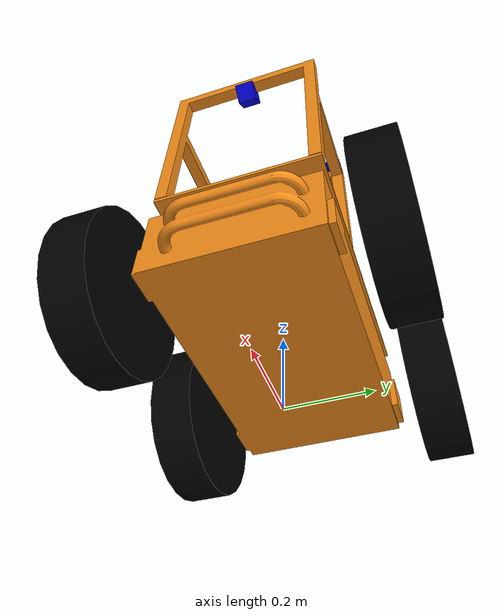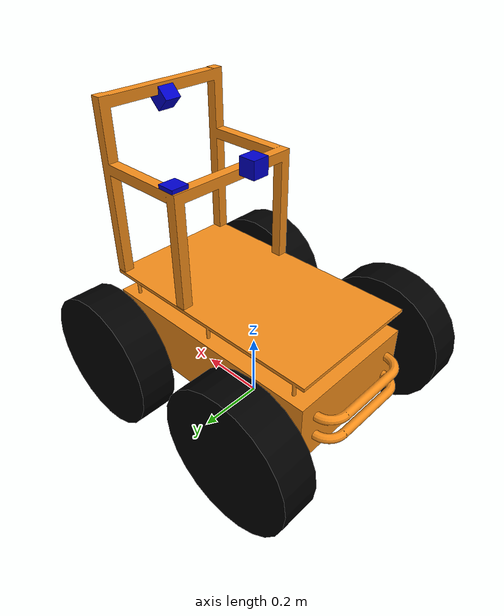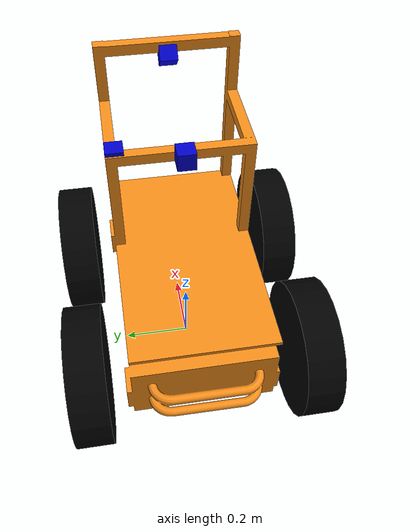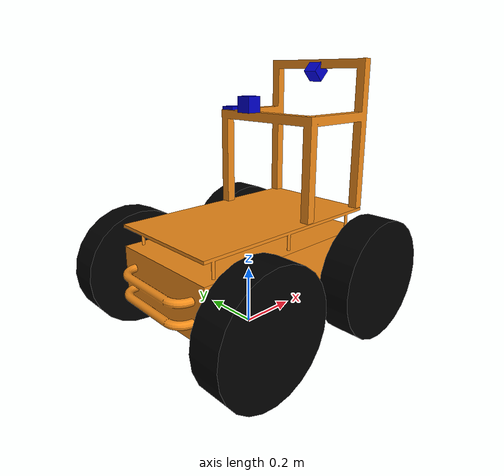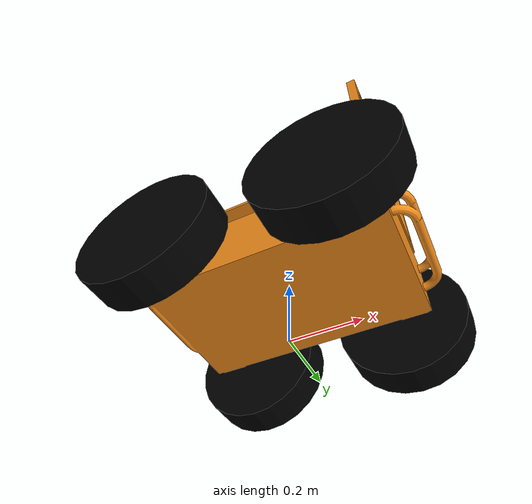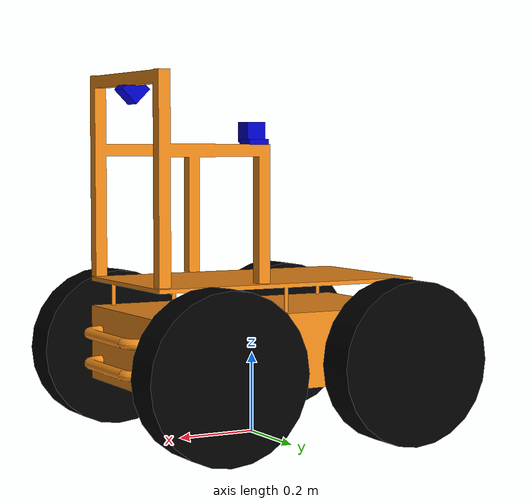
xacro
<?xml version="1.0"?>

<robot name="mybot" xmlns:xacro="http://www.ros.org/wiki/xacro">

  <xacro:property name="PI" value="3.1415926535897931"/>

  <xacro:property name="chassisHeight" value="0.185"/>
  <xacro:property name="chassisLength" value="0.7"/>
  <xacro:property name="chassisWidth" value="0.405"/>
  <xacro:property name="chassisMass" value="35"/>

  <xacro:property name="wheelWidth" value="0.105"/>
  <xacro:property name="wheelRadius" value="0.2"/>
  <xacro:property name="wheelMass" value="3"/>

  <xacro:property name="cameraSize" value="0.05"/>
  <xacro:property name="cameraMass" value="0.1"/>

  <xacro:property name="TrailerHeight" value="0.185"/>
  <xacro:property name="TrailerLength" value="1"/>
  <xacro:property name="TrailerWidth" value="0.405"/>
  <xacro:property name="TrailerMass" value="15"/>

  <xacro:property name="TrailerWheelWidth" value="0.105"/>
  <xacro:property name="TrailerWheelRadius" value="0.2"/>
  <xacro:property name="TrailerWheelMass" value="3"/>

  <xacro:property name="TrailerDistance" value="8."/>

  <xacro:property name="joint_velocity_limit" value="10."/>
  <xacro:property name="joint_effort_limit" value="10000."/>

  <xacro:include filename="$(find mybot_description)/urdf/mybot.gazebo" />
  <xacro:include filename="$(find mybot_description)/urdf/materials.xacro" />
  <xacro:include filename="$(find mybot_description)/urdf/macros.xacro" />

  <link name="footprint" />

  <joint name="base_joint" type="fixed">
    <parent link="footprint"/>
    <child link="chassis"/>
  </joint>

  <link name="chassis">
    <pose>0 0 0.2275 0 0 0</pose>
    <collision>
      <origin xyz="0 0 0.2275" rpy="0 0 0"/>
      <geometry>
        <box size="${chassisLength} ${chassisWidth} ${chassisHeight}"/>
      </geometry>
    </collision>

    <visual name='visual'>
      <origin xyz="0 0 0.2275" rpy="0 0 0"/>
      <geometry>
        <mesh filename="$(find mybot_description)/meshes/saturne.dae">
          <scale>1 1 1</scale>
      </mesh>
      </geometry>
    </visual>

    <inertial>
      <origin xyz="0 0 0.2275" rpy="0 0 0"/>
      <mass value="${chassisMass}"/>
      <xacro:box_inertia m="${chassisMass}" x="${chassisLength}" y="${chassisWidth}" z="${chassisHeight}"/>
    </inertial>
  </link>

  <xacro:wheel lr="left" fb="front" tX="0.25" tY="-0.3175"/>
  <xacro:wheel lr="left" fb="back" tX="-0.25" tY="-0.3175"/>
  <xacro:wheel lr="right" fb="front" tX="0.25" tY="0.3175"/>
  <xacro:wheel lr="right" fb="back" tX="-0.25" tY="0.3175"/>

  <joint name="camera_joint" type="fixed">
    <origin xyz="${-cameraSize/2+chassisLength/2} 0 ${0.88-cameraSize/2}" rpy="0 ${PI/4} 0"/>
    <parent link="chassis"/>
    <child link="camera"/>
  </joint>

  <link name="camera">
    <collision>
      <origin xyz="0 0 0" rpy="0 0 0"/>
      <geometry>
	<box size="${cameraSize} ${cameraSize} ${cameraSize}"/>
      </geometry>
    </collision>

    <visual>
      <origin xyz="0 0 0" rpy="0 0 0"/>
      <geometry>
        <box size="${cameraSize} ${cameraSize} ${cameraSize}"/>
      </geometry>
      <material name="blue"/>
    </visual>

    <inertial>
      <mass value="${cameraMass}" />
      <origin xyz="0 0 0" rpy="0 0 0"/>
      <xacro:box_inertia m="${cameraMass}" x="${cameraSize}" y="${cameraSize}" z="${cameraSize}" />
    </inertial>
  </link>

  <joint name="imu_joint" type="fixed">
    <origin xyz="0 0 ${0.78-cameraSize/2}" rpy="0 0 0"/>
    <parent link="chassis"/>
    <child link="imu_link"/>
  </joint>

  <link name="imu_link">
    <collision>
      <origin xyz="0 0 0" rpy="0 0 0"/>
      <geometry>
        <box size="${cameraSize} ${cameraSize} ${cameraSize}"/>
      </geometry>
    </collision>

    <visual>
      <origin xyz="0 0 0" rpy="0 0 0"/>
      <geometry>
        <box size="${cameraSize} ${cameraSize} ${cameraSize}"/>
      </geometry>
      <material name="blue"/>
    </visual>

    <inertial>
      <mass value="${cameraMass}" />
      <origin xyz="0 0 0" rpy="0 0 0"/>
      <xacro:box_inertia m="${cameraMass}" x="${cameraSize}" y="${cameraSize}" z="${cameraSize}" />
    </inertial>
  </link>

  <joint name="gps_joint" type="fixed">
    <origin xyz="0.09 ${chassisWidth/2-cameraSize/2} ${0.755-cameraSize/2}" rpy="0 0 0"/>
    <parent link="chassis"/>
    <child link="gps_link"/>
  </joint>

  <link name="gps_link">
    <collision>
      <origin xyz="0 0 0" rpy="0 0 0"/>
      <geometry>
        <box size="${cameraSize} ${cameraSize} ${cameraSize/4}"/>
      </geometry>
    </collision>

    <visual>
      <origin xyz="0 0 0" rpy="0 0 0"/>
      <geometry>
        <box size="${cameraSize} ${cameraSize} ${cameraSize/4}"/>
      </geometry>
      <material name="blue"/>
    </visual>

    <inertial>
      <mass value="${cameraMass}" />
      <origin xyz="0 0 0" rpy="0 0 0"/>
      <xacro:box_inertia m="${cameraMass}" x="${cameraSize}" y="${cameraSize}" z="${cameraSize/4}" />
    </inertial>
  </link>

</robot>

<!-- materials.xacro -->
<robot>

  <material name="black">
    <color rgba="0.0 0.0 0.0 1.0"/>
  </material>

  <material name="blue">
      <color rgba="0.0 0.0 0.8 1.0"/>
  </material>

  <material name="green">
      <color rgba="0.0 0.8 0.0 1.0"/>
  </material>

  <material name="grey">
      <color rgba="0.2 0.2 0.2 1.0"/>
  </material>

  <material name="orange">
    <color rgba="${255/255} ${108/255} ${10/255} 1.0"/>
  </material>

  <material name="brown">
    <color rgba="${222/255} ${207/255} ${195/255} 1.0"/>
  </material>

  <material name="red">
    <color rgba="0.8 0.0 0.0 1.0"/>
  </material>

  <material name="white">
    <color rgba="1.0 1.0 1.0 1.0"/>
  </material>

</robot>

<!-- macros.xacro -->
<robot xmlns:xacro="http://www.ros.org/wiki/xacro">
     <xacro:macro name="cylinder_inertia" params="m r h">
        <inertia  ixx="${m*(3*r*r+h*h)/12}" ixy = "0" ixz = "0"
                  iyy="${m*(3*r*r+h*h)/12}" iyz = "0"
                  izz="${m*r*r/2}" />
      </xacro:macro>

      <xacro:macro name="box_inertia" params="m x y z">
        <inertia  ixx="${m*(y*y+z*z)/12}" ixy = "0" ixz = "0"
                  iyy="${m*(x*x+z*z)/12}" iyz = "0"
                  izz="${m*(x*x+y*y)/12}" />
      </xacro:macro>

    <xacro:macro name="wheel" params="lr fb tX tY">

      <link name="${lr}_${fb}_wheel">
        <collision>
          <origin xyz="0 0 0" rpy="0 ${PI/2} ${PI/2}" />
          <geometry>
            <cylinder length="${wheelWidth}" radius="${wheelRadius}"/>
          </geometry>
        </collision>

        <visual>
          <origin xyz="0 0 0" rpy="0 ${PI/2} ${PI/2}" />
          <geometry>
            <cylinder length="${wheelWidth}" radius="${wheelRadius}"/>
          </geometry>
          <material name="black"/>
        </visual>

        <inertial>
          <origin xyz="0 0 0" rpy="0 ${PI/2} ${PI/2}" />
          <mass value="${wheelMass}"/>
          <xacro:cylinder_inertia m="${wheelMass}" r="${wheelRadius}" h="${wheelWidth}"/>
        </inertial>
      </link>

      <gazebo reference="${lr}_${fb}_wheel">
        <mu1 value="1000000.0"/>
        <mu2 value="100.0"/>
        <fdir1 value="1 0 0"/>
        <material>Gazebo/Black</material>
        <turnGravityOff>false</turnGravityOff>
      </gazebo>

      <joint name="${lr}_${fb}_wheel_hinge" type="continuous">
        <parent link="chassis"/>
        <child link="${lr}_${fb}_wheel"/>
        <origin xyz="${tX} ${tY} ${wheelRadius}" rpy="0 0 0" />
        <axis xyz="0 1 0" rpy="0 0 0" />
        <limit effort="100" velocity="100"/>
        <dynamics damping="0.0" friction="0.0"/>
      </joint>

      <transmission name="${lr}_${fb}_trans">
        <type>transmission_interface/SimpleTransmission</type>
        <joint name="${lr}_${fb}_wheel_hinge">
          <hardwareInterface>hardware_interface/VelocityJointInterface</hardwareInterface>
        </joint>
        <actuator name="${lr}_${fb}_Motor">
          <hardwareInterface>hardware_interface/VelocityJointInterface</hardwareInterface>
          <mechanicalReduction>10</mechanicalReduction>
        </actuator>
      </transmission>

    </xacro:macro>

    <xacro:macro name="wheel_trailer" params="lr fb tX tY dist">

      <link name="${lr}_${fb}_trailer_wheel">
        <collision>
          <origin xyz="0 0 0" rpy="0 ${PI/2} ${PI/2}" />
          <geometry>
            <cylinder length="${TrailerWheelWidth}" radius="${TrailerWheelRadius}"/>
          </geometry>
        </collision>

        <visual>
          <origin xyz="0 0 0" rpy="0 ${PI/2} ${PI/2}" />
          <geometry>
            <cylinder length="${TrailerWheelWidth}" radius="${TrailerWheelRadius}"/>
          </geometry>
          <material name="black"/>
        </visual>

        <inertial>
          <origin xyz="0 0 0" rpy="0 ${PI/2} ${PI/2}" />
          <mass value="${TrailerWheelMass}"/>
          <cylinder_inertia m="${TrailerWheelMass}" r="${TrailerWheelRadius}" h="${TrailerWheelWidth}"/>
        </inertial>
      </link>

      <gazebo reference="${lr}_${fb}_trailer_wheel">
        <mu1 value="1000000.0"/>
        <mu2 value="100.0"/>
        <fdir1 value="1 0 0"/>
        <material>Gazebo/Black</material>
        <turnGravityOff>false</turnGravityOff>
      </gazebo>

      <joint name="${lr}_${fb}_trailer_wheel_hinge" type="continuous">
        <parent link="trailer"/>
        <child link="${lr}_${fb}_trailer_wheel"/>
        <origin xyz="${dist + tX} ${tY} ${TrailerWheelRadius}" rpy="0 0 0" />
        <axis xyz="0 1 0" rpy="0 0 0" />
        <limit effort="100" velocity="100"/>
        <dynamics damping="0.0" friction="0.0"/>
      </joint>

    </xacro:macro>

</robot>
